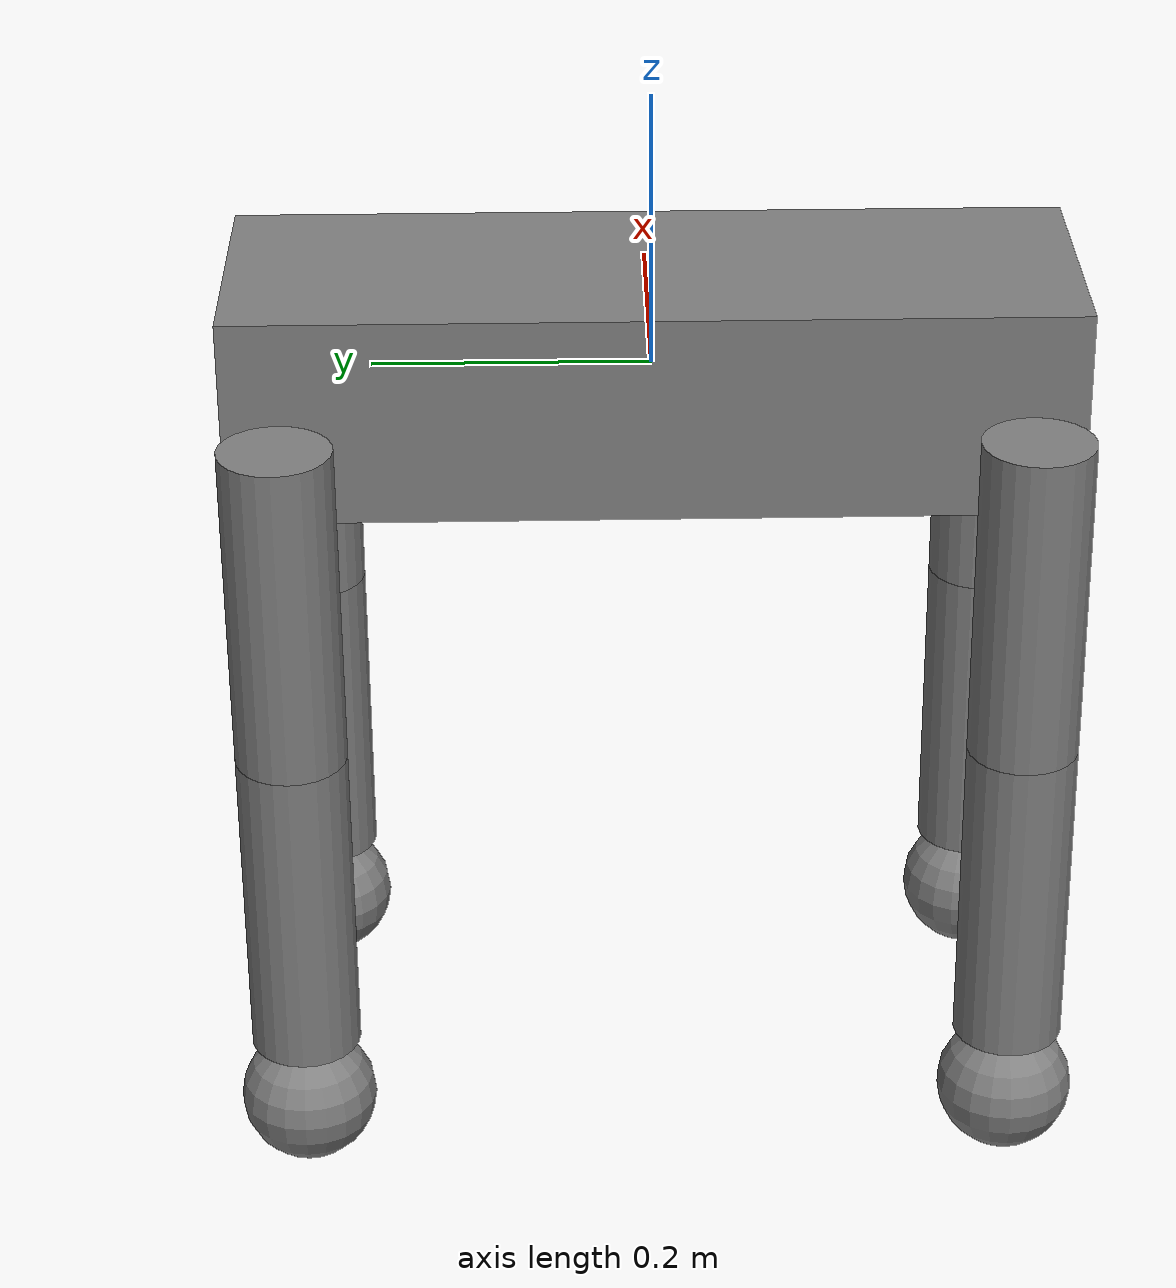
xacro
<?xml version="1.0"?>
<robot name="quadruped_robot" xmlns:xacro="http://wiki.ros.org/xacro">

    <xacro:include filename="$(find quadruped_robot_1)/urdf/quadruped_robot_base.xacro" />
    <xacro:include filename="$(find quadruped_robot_1)/urdf/quadruped_robot_leg.xacro" />

    <link name="world" />
    <xacro:base link_name="base_link" parent="world" />
    <xacro:leg upper_link_name="front_right_upper_leg" lower_link_name="front_right_lower_leg" foot_link_name="front_right_foot" parent="base_link" x_offset="0.14" y_offset="0.26" />
    <xacro:leg upper_link_name="front_left_upper_leg" lower_link_name="front_left_lower_leg" foot_link_name="front_left_foot" parent="base_link" x_offset="-0.14" y_offset="0.26" />
    <xacro:leg upper_link_name="rear_right_upper_leg" lower_link_name="rear_right_lower_leg" foot_link_name="rear_right_foot" parent="base_link" x_offset="0.14" y_offset="-0.26" />
    <xacro:leg upper_link_name="rear_left_upper_leg" lower_link_name="rear_left_lower_leg" foot_link_name="rear_left_foot" parent="base_link" x_offset="-0.14" y_offset="-0.26" />

    <gazebo>
        <plugin name="gazebo_ros_control" filename="libgazebo_ros_control.so">
            <robotNamespace></robotNamespace> <!--単一ロボットなので、名前空間衝突の心配がないから、未定義でおけ-->
        </plugin>
    </gazebo>
</robot>

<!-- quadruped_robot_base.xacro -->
<robot xmlns:xacro="http://wiki.ros.org/xacro">
    <xacro:macro name="base" params="link_name parent">
        <link name="${link_name}">
            <visual>
                <geometry>
                    <box size="0.2 0.6 0.15" />
                </geometry>

                <material name="gray">
                    <color rgba="0.5 0.5 0.5 1" />
                </material>
            </visual>

            <collision>
                <geometry>
                    <box size="0.2 0.6 0.15" />
                </geometry>
            </collision>

            <inertial>
                <mass value="10.0" />
                <origin xyz="0 0 0" />
                <inertia ixx="0.152" iyy="0.166" izz="0.052" ixy="0" ixz="0" iyz="0" />
            </inertial>
        </link>
        <gazebo reference="${link_name}">
            <selfCollide>false</selfCollide>
            <mu1>0.4</mu1>
            <mu2>0.2</mu2>
        </gazebo>

        <joint name="${parent}_to_${link_name}" type="fixed">
            <parent link="${parent}" />
            <child link="${link_name}" />
            <origin xyz="0 0 0" />
            </joint>
    </xacro:macro>
</robot>

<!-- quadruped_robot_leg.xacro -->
<robot xmlns:xacro="http://wiki.ros.org/xacro">

    <xacro:property name="leg_length" value="0.24"/>
    <xacro:property name="leg_radius" value="0.04"/>
    <xacro:property name="foot_radius" value="0.05" />

    <xacro:macro name="leg" params="upper_link_name lower_link_name foot_link_name parent x_offset y_offset">
        <link name="${upper_link_name}">
            <visual>
                <origin xyz="0 0 -${leg_length/2}" />

                <geometry>
                    <cylinder radius="${leg_radius}" length="${leg_length}" />
                </geometry>

                <material name="gray">
                    <color rgba="0.5 0.5 0.5 1" />
                </material>
            </visual>

            <collision>
                <origin xyz="0 0 -${leg_length/2}" />

                <geometry>
                    <cylinder radius="${leg_radius}" length="${leg_length}" />
                </geometry>
            </collision>

            <inertial>
                <origin xyz="0 0 -${leg_length/2}" />
                <mass value="1.0" />
                <inertia ixx="0.0309" iyy="0.0084" izz="0.018" ixy="0" ixz="0" iyz="0" />
            </inertial>
        </link>
        <gazebo reference="${upper_link_name}">
            <selfCollide>false</selfCollide>
            <mu1>0.4</mu1>
            <mu2>0.2</mu2>
        </gazebo>

        <joint name="base_to_${upper_link_name}" type="revolute">
            <parent link="${parent}" />
            <child link="${upper_link_name}" />
            <origin rpy="0 0 0" xyz="${x_offset} ${y_offset} 0" />
            <axis xyz="1 0 0" />
            <limit lower="-1.57" upper="1.57" effort="10" velocity="1.0"/>
            <dynamics damping="0.1" friction="0.1"/>
        </joint>
        <transmission name="${upper_link_name}_trans">
            <type>transmission_interface/SimpleTransmission</type>
            <actuator name="${upper_link_name}_motor">
                <mechanicalReduction>1</mechanicalReduction> <!--とりあえずテストしたいだけなので、現実のギア減速やらトルクは気にしなくていい-->
            </actuator>
            <joint name="base_to_${upper_link_name}">
                <hardwareInterface>hardware_interface/PositionJointInterface</hardwareInterface> <!--とりあえずgazeboでテストしたいだけなので、力制御と速度制御は捨ておく-->
            </joint>
        </transmission>

        <link name="${lower_link_name}">
            <visual>
                <origin xyz="0 0 -${leg_length/2}" />

                <geometry>
                    <cylinder radius="${leg_radius}" length="${leg_length}" />
                </geometry>

                <material name="gray">
                    <color rgba="0.5 0.5 0.5 1" />
                </material>
            </visual>

            <collision>
                <origin xyz="0 0 -${leg_length/2}" />

                <geometry>
                    <cylinder radius="${leg_radius}" length="${leg_length}" />
                </geometry>
            </collision>

            <inertial>
                <origin xyz="0 0 -${leg_length/2}" />
                <mass value="1.0" />
                <inertia ixx="0.0309" iyy="0.0084" izz="0.018" ixy="0" ixz="0" iyz="0" />
            </inertial>
        </link>
        <gazebo reference="${lower_link_name}">
            <selfCollide>false</selfCollide>
            <mu1>0.4</mu1>
            <mu2>0.2</mu2>
        </gazebo>

        <joint name="${upper_link_name}_to_${lower_link_name}" type="revolute">
            <parent link="${upper_link_name}" />
            <child link="${lower_link_name}" />
            <origin rpy="0 0 0" xyz="0 0 -${leg_length}" />
            <axis xyz="1 0 0" />
            <limit lower="-1.57" upper="1.57" effort="10" velocity="1.0"/>
            <dynamics damping="0.1" friction="0.1"/>
        </joint>
        <transmission name="${lower_link_name}_trans">
            <type>transmission_interface/SimpleTransmission</type>
            <actuator name="${lower_link_name}_motor">
                <mechanicalReduction>1</mechanicalReduction> <!--とりあえずテストしたいだけなので、現実のギア減速やらトルクは気にしなくていい-->
            </actuator>
            <joint name="${upper_link_name}_to_${lower_link_name}">
                <hardwareInterface>hardware_interface/PositionJointInterface</hardwareInterface> <!--とりあえずgazeboでテストしたいだけなので、力制御と速度制御は捨ておく-->
            </joint>
        </transmission>

        <link name="${foot_link_name}">
            <visual>
                <origin xyz="0 0 -${foot_radius}" />

                <geometry>
                    <sphere radius="${foot_radius}" />
                </geometry>

                <material name="gray">
                    <color rgba="0.5 0.5 0.5 1" />
                </material>
            </visual>

            <collision>
                <origin xyz="0 0 -${foot_radius}" />

                <geometry>
                    <sphere radius="${foot_radius}" />
                </geometry>
            </collision>

            <inertial>
                <origin xyz="0 0 -${foot_radius}" />
                <mass value="0.5" />
                <inertia ixx="0.00175" iyy="0.00175" izz="0.0005" ixy="0" ixz="0" iyz="0" />
            </inertial>
        </link>
        <gazebo reference="${foot_link_name}">
            <selfCollide>false</selfCollide>
            <mu1>0.8</mu1>
            <mu2>1.0</mu2>
        </gazebo>

        <joint name="${lower_link_name}_to_${foot_link_name}" type="fixed">
            <parent link="${lower_link_name}" />
            <child link="${foot_link_name}" />
            <origin rpy="0 0 0" xyz="0 0 -${leg_length}" />
        </joint>
    </xacro:macro>
</robot>
